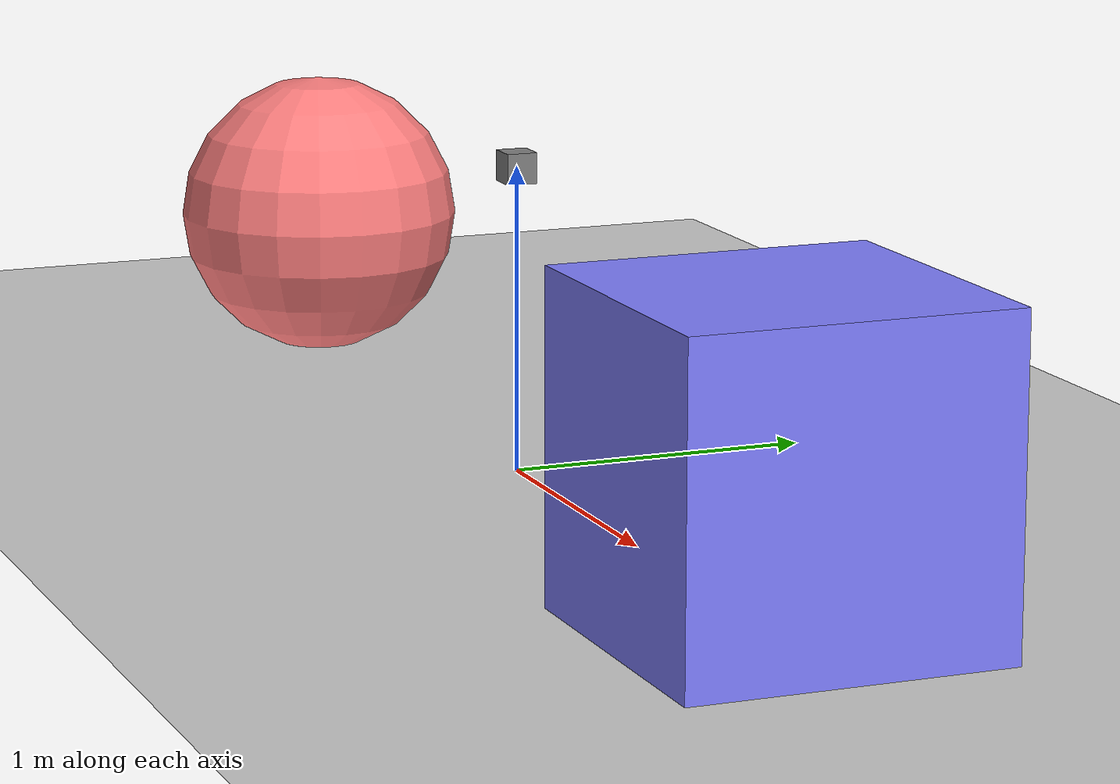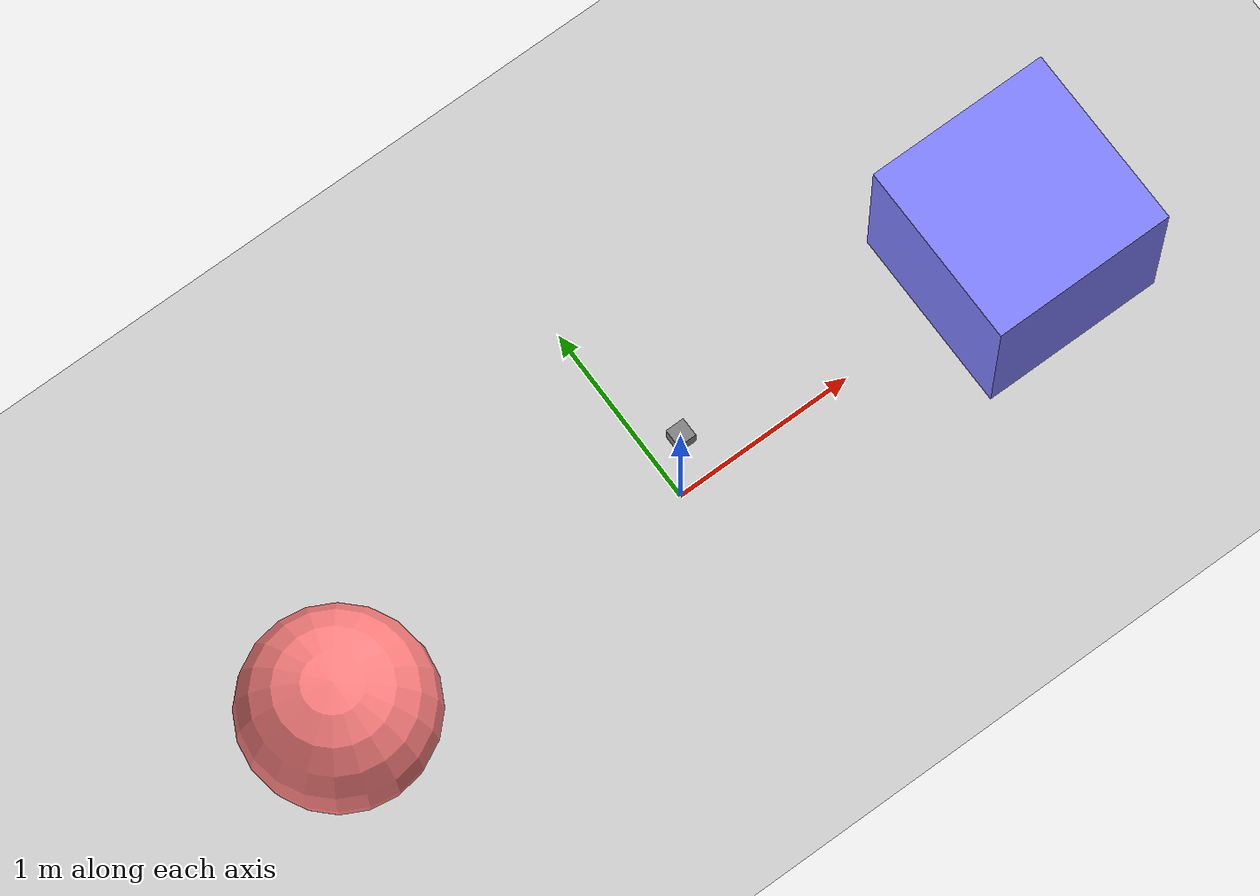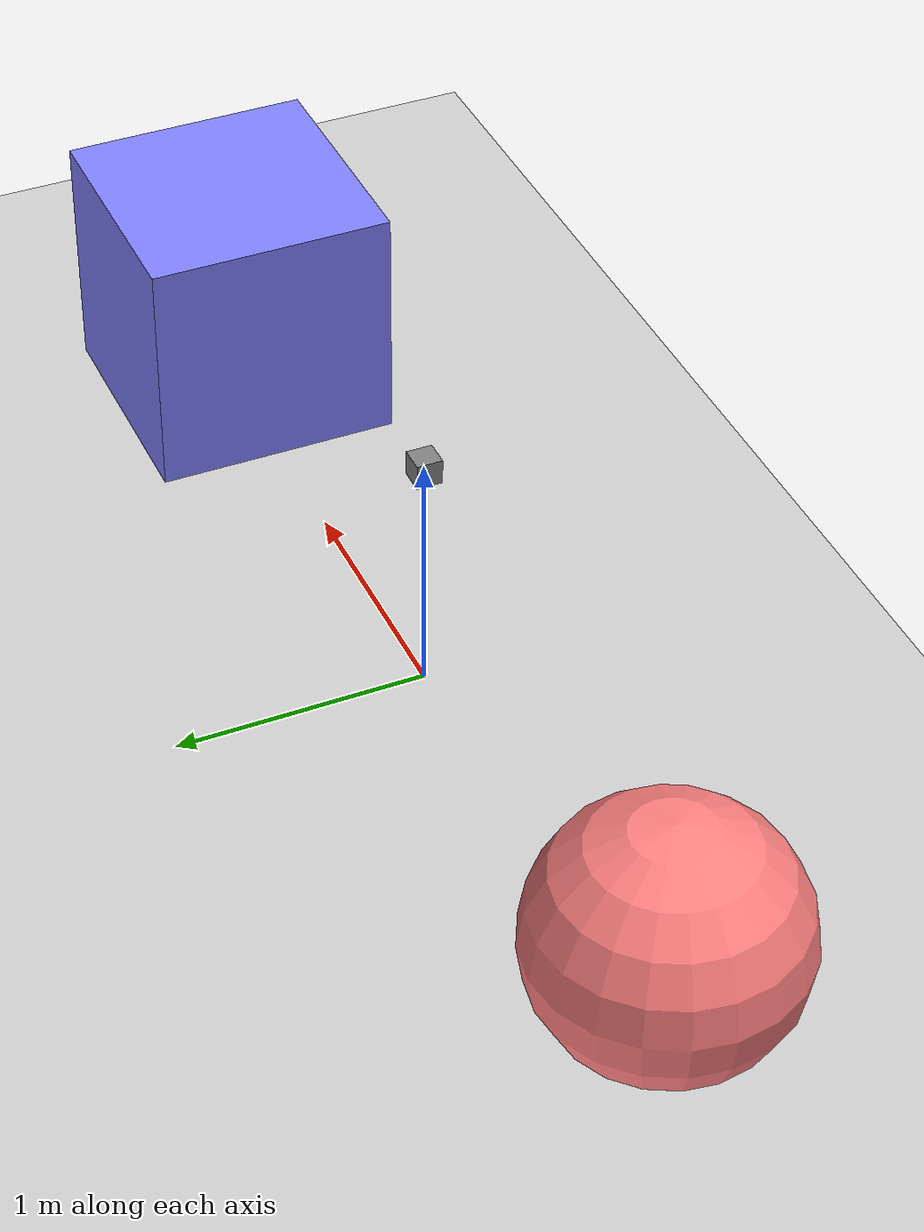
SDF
<?xml version="1.0" ?>
<sdf version="1.7">
  <world name="default">
    <physics name="default_physics" type="ode" default="true">
      <max_step_size>0.001</max_step_size>
      <real_time_factor>1</real_time_factor>
      <real_time_update_rate>1000</real_time_update_rate>
    </physics>

    <light name="sun" type="directional">
      <pose>0 0 10 0 0 0</pose>
      <diffuse>1 1 1 1</diffuse>
      <specular>0.1 0.1 0.1 1</specular>
      <attenuation>
        <range>1000</range>
        <constant>0.9</constant>
        <linear>0.01</linear>
        <quadratic>0.001</quadratic>
      </attenuation>
      <direction>-0.5 0.5 -1</direction>
    </light>

    <model name="ground_plane">
      <static>true</static>
      <link name="link">
        <collision name="collision">
          <geometry>
            <plane>
              <normal>0 0 1</normal>
              <size>100 100</size>
            </plane>
          </geometry>
        </collision>
        <visual name="visual">
          <geometry>
            <plane>
              <normal>0 0 1</normal>
              <size>100 100</size>
            </plane>
          </geometry>
          <material>
            <ambient>0.8 0.8 0.8 1</ambient>
            <diffuse>0.8 0.8 0.8 1</diffuse>
            <specular>0.1 0.1 0.1 1</specular>
          </material>
        </visual>
      </link>
    </model>

    <model name="box">
      <pose>2 0 0.5 0 0 0</pose>
      <link name="link">
        <collision name="collision">
          <geometry>
            <box>
              <size>1 1 1</size>
            </box>
          </geometry>
        </collision>
        <visual name="visual">
          <geometry>
            <box>
              <size>1 1 1</size>
            </box>
          </geometry>
          <material>
            <ambient>0.5 0.5 1 1</ambient>
            <diffuse>0.5 0.5 1 1</diffuse>
            <specular>0.1 0.1 0.1 1</specular>
          </material>
        </visual>
      </link>
    </model>

    <model name="sphere">
      <pose>-2 0 0.5 0 0 0</pose>
      <link name="link">
        <collision name="collision">
          <geometry>
            <sphere>
              <radius>0.5</radius>
            </sphere>
          </geometry>
        </collision>
        <visual name="visual">
          <geometry>
            <sphere>
              <radius>0.5</radius>
            </sphere>
          </geometry>
          <material>
            <ambient>1 0.5 0.5 1</ambient>
            <diffuse>1 0.5 0.5 1</diffuse>
            <specular>0.1 0.1 0.1 1</specular>
          </material>
        </visual>
      </link>
    </model>

    <model name="twin_camera">
      <pose>0 0 1.0 0 0 0</pose>
      <static>false</static>
      <link name="link">
        <inertial>
          <mass>0.1</mass>
          <inertia>
            <ixx>0.001</ixx>
            <iyy>0.001</iyy>
            <izz>0.001</izz>
          </inertia>
        </inertial>
        <visual name="visual">
          <geometry>
            <box>
              <size>0.1 0.1 0.1</size>
            </box>
          </geometry>
          <material>
            <ambient>0.5 0.5 0.5 1</ambient>
            <diffuse>0.5 0.5 0.5 1</diffuse>
          </material>
        </visual>
        <collision name="collision">
          <geometry>
            <box>
              <size>0.1 0.1 0.1</size>
            </box>
          </geometry>
        </collision>
        <sensor name="depth_camera" type="depth_camera">
          <pose>0 0 0 0 0 0</pose>
          <update_rate>30</update_rate>
          <camera>
            <horizontal_fov>1.047</horizontal_fov>
            <image>
              <width>640</width>
              <height>480</height>
              <format>R8G8B8</format>
            </image>
            <clip>
              <near>0.1</near>
              <far>10</far>
            </clip>
          </camera>
          <topic>/camera/depth/image_raw</topic>
          <color_topic>/camera/color/image_raw</color_topic>
          <point_cloud_topic>/camera/depth_registered/points</point_cloud_topic>
          <info_topic>/camera/camera_info</info_topic>
        </sensor>
      </link>
    </model>
  </world>
</sdf>
